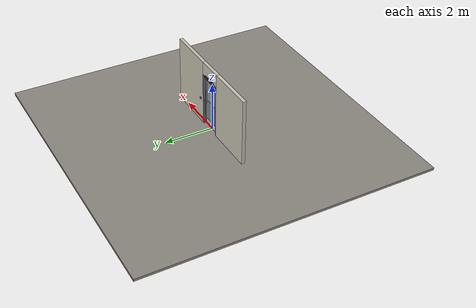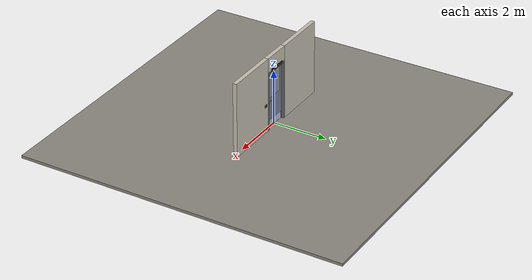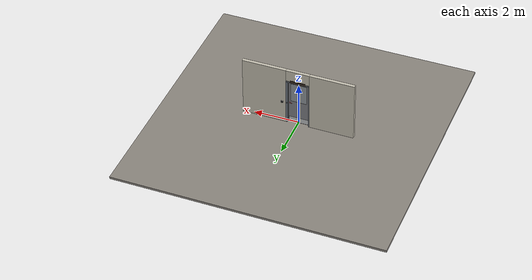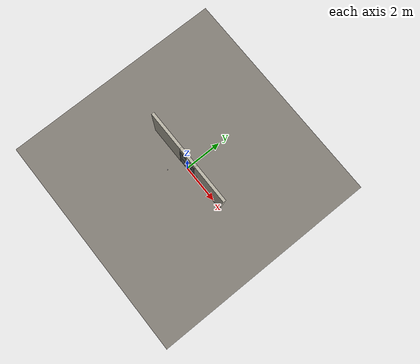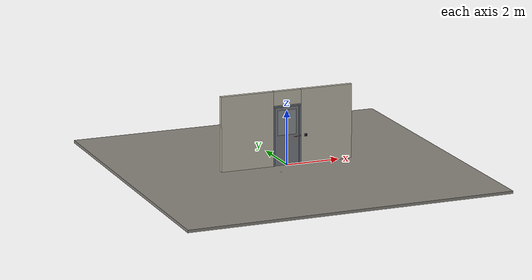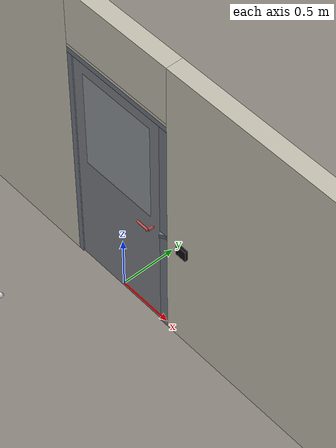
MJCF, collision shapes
<?xml version="1.0" ?>
<mujoco model="db0225_automatic_swing_full">
  <compiler angle="radian" meshdir="../../hardware" texturedir="../../textures" autolimits="true" inertiafromgeom="false"/>
  <option timestep="0.002" integrator="implicitfast" cone="elliptic" impratio="10" noslip_iterations="3">
    <flag multiccd="enable"/>
  </option>
  <size memory="16M"/>
  <default>
    <geom condim="4" solref="0.005 1" solimp="0.95 0.99 0.001"/>
    <joint solreflimit="0.005 1" solimplimit="0.95 0.99 0.001"/>
    <tendon solreflimit="0.005 1"/>
    <equality solref="0.002 1"/>
  </default>
  <visual>
    <headlight ambient="0.4 0.4 0.4" diffuse="0.7 0.7 0.7" specular="0.2 0.2 0.2"/>
    <quality shadowsize="4096"/>
    <map znear="0.01" zfar="60"/>
  </visual>
  <asset>
    <mesh name="hinge_e22b26c0c1" file="hinge_e22b26c0c1.obj"/>
    <mesh name="hinge_jamb_e1d088f8dc" file="hinge_jamb_e1d088f8dc.obj"/>
    <mesh name="lever_9f02b544cf" file="lever_9f02b544cf.obj"/>
    <material name="mat_floor" rgba="0.55 0.53 0.5 1" specular="0.2" shininess="0.15" reflectance="0"/>
    <material name="mat_wall" rgba="0.78 0.76 0.7 1" specular="0.2" shininess="0.1" reflectance="0"/>
    <material name="mat_leaf" rgba="0.5 0.51 0.53 1" specular="0.23" shininess="0.33" reflectance="0.02"/>
    <material name="mat_glass" rgba="0.85 0.92 0.95 0.25" specular="0.2" shininess="0.95" reflectance="0.1"/>
    <material name="mat_hinge" rgba="0.65 0.66 0.68 1" specular="0.74" shininess="0.5" reflectance="0.36"/>
    <material name="mat_op_nickel_satin" rgba="0.72 0.7 0.66 1" specular="0.8" shininess="0.65" reflectance="0.4"/>
    <material name="mat_trim" rgba="0.85 0.66 0.3 1" specular="0.8" shininess="0.75" reflectance="0.4"/>
    <material name="mat_bolt" rgba="0.85 0.66 0.3 1" specular="0.8" shininess="0.75" reflectance="0.4"/>
    <material name="mat_frame" rgba="0.45 0.48 0.52 1" specular="0.32" shininess="0.6" reflectance="0.08"/>
    <material name="mat_closer" rgba="0.22 0.17 0.13 1" specular="0.8" shininess="0.6" reflectance="0.4"/>
    <material name="mat_kick" rgba="0.75 0.76 0.77 1" specular="0.8" shininess="0.65" reflectance="0.4"/>
    <material name="mat_wallreader" rgba="0.05 0.05 0.05 1" specular="0.38" shininess="0.3" reflectance="0.12"/>
    <material name="mat_stop" rgba="0.9 0.9 0.92 1" specular="0.8" shininess="0.9" reflectance="0.4"/>
    <texture name="skybox" type="skybox" builtin="gradient" rgb1="0.6 0.7 0.85" rgb2="0.9 0.92 0.95" width="256" height="256"/>
  </asset>
  <worldbody>
    <light name="sun" pos="1.5 -2.5 4" dir="-0.3 0.5 -0.8" directional="true" diffuse="0.8 0.8 0.8" specular="0.3 0.3 0.3" castshadow="true"/>
    <light name="fill" pos="-1.5 2.5 3" dir="0.3 -0.5 -0.7" directional="true" diffuse="0.35 0.35 0.4" castshadow="false"/>
    <camera name="robot_view" pos="0 -2.594313 1.812087" xyaxes="1 0 0 0 0.26963 0.962964" fovy="52"/>
    <camera name="far_view" pos="0 2.681312 1.812087" xyaxes="-1 0 0 0 -0.26963 0.962964" fovy="52"/>
    <camera name="iso" pos="2.004737 -2.172262 2.234138" xyaxes="0.741536 0.670913 0 -0.242917 0.268487 0.932151" fovy="46"/>
    <camera name="detail_handle" pos="0.4665 -0.877 1.32" xyaxes="0.97561 0.219512 0 -0.070934 0.315262 0.94635" fovy="38"/>
    <geom name="floor" type="box" size="6 6 0.05" pos="0 0 -0.05" material="mat_floor" group="0" contype="1" conaffinity="1" friction="0.8 0.005 0.0001" density="2400"/>
    <geom name="wall_left" type="box" size="0.99475 0.0725 1.3735" pos="-1.50525 0.0435 1.3735" material="mat_wall" group="0" contype="1" conaffinity="1" friction="0.6 0.005 0.0001" density="800"/>
    <geom name="wall_right" type="box" size="0.97975 0.0725 1.3735" pos="1.52025 0.0435 1.3735" material="mat_wall" group="0" contype="1" conaffinity="1" friction="0.6 0.005 0.0001" density="800"/>
    <geom name="wall_header" type="box" size="0.5255 0.0725 0.26" pos="0.015 0.0435 2.487" material="mat_wall" group="0" contype="1" conaffinity="1" friction="0.6 0.005 0.0001" density="800"/>
    <geom name="hinge_0_jamb" type="mesh" mesh="hinge_jamb_e1d088f8dc" pos="-0.4575 -0.029 0.259" material="mat_hinge" group="1" contype="0" conaffinity="0" density="7850"/>
    <geom name="hinge_1_jamb" type="mesh" mesh="hinge_jamb_e1d088f8dc" pos="-0.4575 -0.029 0.827" material="mat_hinge" group="1" contype="0" conaffinity="0" density="7850"/>
    <geom name="hinge_2_jamb" type="mesh" mesh="hinge_jamb_e1d088f8dc" pos="-0.4575 -0.029 1.395" material="mat_hinge" group="1" contype="0" conaffinity="0" density="7850"/>
    <geom name="hinge_3_jamb" type="mesh" mesh="hinge_jamb_e1d088f8dc" pos="-0.4575 -0.029 1.963" material="mat_hinge" group="1" contype="0" conaffinity="0" density="7850"/>
    <geom name="jamb_hinge" type="box" size="0.025 0.0725 1.0735" pos="-0.4855 0.0435 1.0735" material="mat_frame" group="0" contype="1" conaffinity="1" friction="0.6 0.005 0.0001" density="300"/>
    <geom name="strike_1040_wall_n" type="box" size="0.04 0.05325 0.0183" pos="0.5005 0.06275 1.04" material="mat_frame" group="0" contype="1" conaffinity="1" friction="0.6 0.005 0.0001" density="300"/>
    <geom name="strike_1040_wall_p" type="box" size="0.04 0.008 0.0183" pos="0.5005 -0.0175 1.04" material="mat_frame" group="0" contype="1" conaffinity="1" friction="0.6 0.005 0.0001" density="300"/>
    <geom name="strike_1040_ramp" type="box" size="0.04 0.018028 0.0183" pos="0.503782 -0.018312 1.04" quat="0.957092 0 0 0.289784" material="mat_frame" group="0" contype="1" conaffinity="1" friction="0.12 0.005 0.0001" density="300"/>
    <geom name="strike_1040_back" type="box" size="0.0285 0.0095 0.0183" pos="0.512 0 1.04" material="mat_frame" group="0" contype="1" conaffinity="1" friction="0.6 0.005 0.0001" density="300"/>
    <geom name="jamb_strike_0" type="box" size="0.04 0.0725 0.51085" pos="0.5005 0.0435 0.51085" material="mat_frame" group="0" contype="1" conaffinity="1" friction="0.6 0.005 0.0001" density="300"/>
    <geom name="jamb_strike_1" type="box" size="0.04 0.0725 0.54435" pos="0.5005 0.0435 1.60265" material="mat_frame" group="0" contype="1" conaffinity="1" friction="0.6 0.005 0.0001" density="300"/>
    <geom name="jamb_head" type="box" size="0.5255 0.0725 0.025" pos="0.015 0.0435 2.172" material="mat_frame" group="0" contype="1" conaffinity="1" friction="0.6 0.005 0.0001" density="300"/>
    <geom name="head_stud" type="box" size="0.5255 0.0725 0.015" pos="0.015 0.0435 2.212" material="mat_wall" group="0" contype="1" conaffinity="1" friction="0.6 0.005 0.0001" density="500"/>
    <geom name="stop_hinge" type="box" size="0.0055 0.016 1.0735" pos="-0.455 0.0385 1.0735" material="mat_frame" group="0" contype="1" conaffinity="1" friction="0.6 0.005 0.0001" density="300"/>
    <geom name="stop_strike" type="box" size="0.0055 0.016 1.0735" pos="0.455 0.0385 1.0735" material="mat_frame" group="0" contype="1" conaffinity="1" friction="0.6 0.005 0.0001" density="300"/>
    <geom name="stop_head" type="box" size="0.4605 0.016 0.0055" pos="0 0.0385 2.1415" material="mat_frame" group="0" contype="1" conaffinity="1" friction="0.6 0.005 0.0001" density="300"/>
    <geom name="auto_operator_header" type="box" size="0.34 0.055 0.055" pos="0 0.087 2.218" material="mat_closer" group="0" contype="1" conaffinity="1" friction="0.6 0.005 0.0001" density="1500"/>
    <geom name="wave_sensor_n" type="box" size="0.05 0.012 0.05" pos="0.7105 -0.041 1.05" material="mat_wallreader" group="0" contype="1" conaffinity="1" friction="0.6 0.005 0.0001" density="1000"/>
    <geom name="wave_sensor_p" type="box" size="0.05 0.012 0.05" pos="0.7105 0.128 1.05" material="mat_wallreader" group="0" contype="1" conaffinity="1" friction="0.6 0.005 0.0001" density="1000"/>
    <geom name="wave_sensor_p_pad" type="box" size="0.04 0.073 0.04" pos="0.7105 0.0435 1.05" material="mat_wallreader" group="1" contype="0" conaffinity="0" density="7850"/>
    <geom name="floor_stop_dome" type="sphere" size="0.025" pos="-0.545135 -0.801201 0" material="mat_stop" group="0" contype="1" conaffinity="1" friction="0.6 0.005 0.0001" density="7000"/>
    <site name="approach_point" pos="0 -1.5 0" quat="1 0 0 0" size="0.05" rgba="0.2 0.9 0.2 0.5" group="4"/>
    <site name="goal_point" pos="0 1.5 0" quat="1 0 0 0" size="0.05" rgba="0.2 0.9 0.2 0.5" group="4"/>
    <site name="door_plane_center" pos="0 0 1.0735" quat="1 0 0 0" size="0.02" rgba="0.2 0.9 0.2 0.5" group="4"/>
    <body name="leaf" pos="-0.4605 0 0">
      <inertial pos="0.445943 0.001843 1.019777" mass="53.179686" quat="-0.498761 0.496697 0.502227 0.502292" diaginertia="3.85044165 22.514829928 26.341748202"/>
      <joint name="leaf_hinge" type="hinge" axis="0 0 -1" pos="0.003 -0.029 0" limited="true" range="0 1.658063" damping="15.268966" frictionloss="0.293338" stiffness="12.827888" springref="-1.543512" armature="0.02"/>
      <geom name="leaf_slab" type="box" size="0.457 0.022 1.067" pos="0.46 0 1.076" material="mat_leaf" group="0" contype="1" conaffinity="1" friction="0.4 0.005 0.0001" density="1"/>
      <geom name="leaf_glass_0" type="box" size="0.35646 0.0228 0.45881" pos="0.46 0 1.57749" material="mat_glass" group="1" contype="0" conaffinity="0" density="1"/>
      <geom name="hinge_0" type="mesh" mesh="hinge_e22b26c0c1" pos="0.003 -0.029 0.259" material="mat_hinge" group="1" contype="0" conaffinity="0" density="7850"/>
      <geom name="hinge_1" type="mesh" mesh="hinge_e22b26c0c1" pos="0.003 -0.029 0.827" material="mat_hinge" group="1" contype="0" conaffinity="0" density="7850"/>
      <geom name="hinge_2" type="mesh" mesh="hinge_e22b26c0c1" pos="0.003 -0.029 1.395" material="mat_hinge" group="1" contype="0" conaffinity="0" density="7850"/>
      <geom name="hinge_3" type="mesh" mesh="hinge_e22b26c0c1" pos="0.003 -0.029 1.963" material="mat_hinge" group="1" contype="0" conaffinity="0" density="7850"/>
      <geom name="leaf_latch_bolt_faceplate" type="box" size="0.0006 0.014 0.0283" pos="0.9164 0 1.04" material="mat_bolt" group="1" contype="0" conaffinity="0" density="8500"/>
      <geom name="auto_operator_arm" type="box" size="0.22 0.008 0.008" pos="0.25 0.052 2.114" material="mat_closer" group="1" contype="0" conaffinity="0" density="2700"/>
      <geom name="auto_operator_arm_shoe" type="box" size="0.03 0.016 0.014" pos="0.44 0.038 2.114" material="mat_closer" group="1" contype="0" conaffinity="0" density="2700"/>
      <geom name="kick_plate_p" type="box" size="0.427 0.0008 0.125" pos="0.46 0.0228 0.144" material="mat_kick" group="2" contype="0" conaffinity="0" density="7900"/>
      <site name="leaf_edge_mid" pos="0.917 0 1.067" quat="1 0 0 0" size="0.02" rgba="0.2 0.9 0.2 0.5" group="4"/>
      <body name="leaf_handle" pos="0.847 0 1.04">
        <inertial pos="-0.028311 -0.000712 0" mass="0.986216" quat="0.710824 0 0 -0.70337" diaginertia="0.001778471 0.003665782 0.005265906"/>
        <joint name="leaf_handle_hinge" type="hinge" axis="0 -1 0" limited="true" range="0 0.96" damping="0.245626" frictionloss="0.048" stiffness="1.2" springref="-0.458333" armature="0.01"/>
        <geom name="leaf_handle_spindle" type="cylinder" size="0.006 0.03" pos="0 0 0" quat="0.707107 -0.707107 0 0" material="mat_op_nickel_satin" group="1" contype="0" conaffinity="0" density="7850"/>
        <geom name="leaf_handle_lever_n" type="mesh" mesh="lever_9f02b544cf" pos="0 -0.022 0" quat="0.707107 0.707107 0 0" material="mat_op_nickel_satin" group="1" contype="0" conaffinity="0" density="3000"/>
        <geom name="leaf_handle_lever_col_n" type="capsule" size="0.0095 0.053" pos="-0.0625 -0.077 0" quat="0.707107 0 -0.707107 0" material="mat_op_nickel_satin" group="3" contype="1" conaffinity="1" rgba="0.8 0.3 0.3 0.25" friction="0.7 0.01 0.0001" density="3000"/>
        <geom name="leaf_handle_hub_col_n" type="cylinder" size="0.012 0.022" pos="0 -0.052 0" quat="0.707107 -0.707107 0 0" material="mat_op_nickel_satin" group="3" contype="1" conaffinity="1" rgba="0.8 0.3 0.3 0.25" friction="0.6 0.005 0.0001" density="3000"/>
        <geom name="leaf_handle_turn_button_n" type="cylinder" size="0.006 0.005" pos="0 -0.0875 0" quat="0.707107 -0.707107 0 0" material="mat_trim" group="1" contype="0" conaffinity="0" density="7100"/>
        <geom name="leaf_handle_lever_p" type="mesh" mesh="lever_9f02b544cf" pos="0 0.022 0" quat="-0.707107 0.707107 0 0" material="mat_op_nickel_satin" group="1" contype="0" conaffinity="0" density="3000"/>
        <geom name="leaf_handle_lever_col_p" type="capsule" size="0.0095 0.053" pos="-0.0625 0.077 0" quat="0.707107 0 -0.707107 0" material="mat_op_nickel_satin" group="3" contype="1" conaffinity="1" rgba="0.8 0.3 0.3 0.25" friction="0.7 0.01 0.0001" density="3000"/>
        <geom name="leaf_handle_hub_col_p" type="cylinder" size="0.012 0.022" pos="0 0.052 0" quat="0.707107 -0.707107 0 0" material="mat_op_nickel_satin" group="3" contype="1" conaffinity="1" rgba="0.8 0.3 0.3 0.25" friction="0.6 0.005 0.0001" density="3000"/>
        <site name="leaf_handle_grip_n" pos="-0.1 -0.077 0" quat="1 0 0 0" size="0.012" rgba="0.2 0.9 0.2 0.5" group="4"/>
        <site name="leaf_handle_grip_p" pos="-0.1 0.077 0" quat="1 0 0 0" size="0.012" rgba="0.2 0.9 0.2 0.5" group="4"/>
      </body>
      <body name="leaf_latch_bolt" pos="0.917 0 1.04">
        <inertial pos="-0.0055 0 0" mass="0.074627" quat="0.92388 -0.382683 0 0" diaginertia="0.000002271 0.000013255 0.000013255"/>
        <joint name="leaf_latch_bolt_slide" type="slide" axis="-1 0 0" limited="true" range="0 0.019" damping="2" frictionloss="0.3" stiffness="600" springref="-0.01" armature="0.1"/>
        <geom name="leaf_latch_bolt_capsule" type="capsule" size="0.008 0.0165" pos="-0.0055 0 0" quat="0.707107 0 0.707107 0" material="mat_bolt" group="0" contype="1" conaffinity="1" friction="0.2 0.005 0.0001" density="8500"/>
      </body>
    </body>
  </worldbody>
  <tendon>
    <fixed name="leaf_latch_bolt_coupling" limited="true" range="0 10">
      <joint joint="leaf_latch_bolt_slide" coef="1"/>
      <joint joint="leaf_handle_hinge" coef="-0.020879"/>
    </fixed>
  </tendon>
  <actuator>
    <position name="swing_operator" joint="leaf_hinge" kp="150" kv="40" forcerange="-60 60" ctrlrange="0 1.6"/>
  </actuator>
  <sensor>
    <jointpos name="leaf_hinge_pos" joint="leaf_hinge"/>
    <jointvel name="leaf_hinge_vel" joint="leaf_hinge"/>
    <jointpos name="leaf_handle_hinge_pos" joint="leaf_handle_hinge"/>
    <jointvel name="leaf_handle_hinge_vel" joint="leaf_handle_hinge"/>
    <jointpos name="leaf_latch_bolt_slide_pos" joint="leaf_latch_bolt_slide"/>
    <jointvel name="leaf_latch_bolt_slide_vel" joint="leaf_latch_bolt_slide"/>
  </sensor>
</mujoco>
